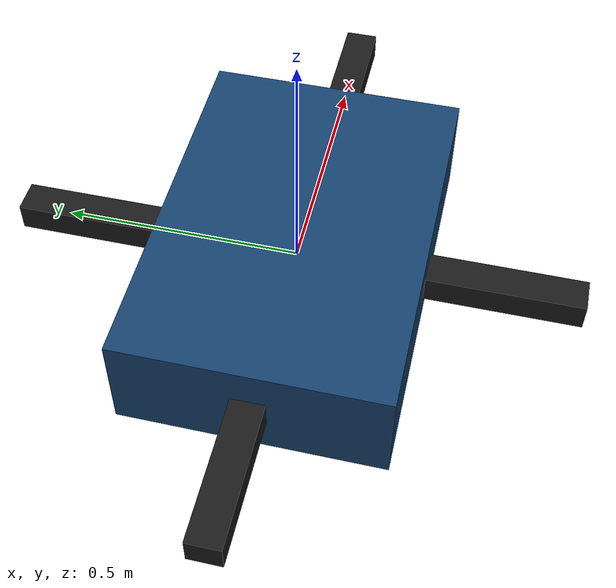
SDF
<?xml version="1.0"?>
<sdf version="1.6">
  <model name="inspection_drone">
    <static>false</static>
    <link name="base_link">
      <gravity>false</gravity>
      <inertial><mass>3.0</mass><inertia><ixx>0.2</ixx><iyy>0.2</iyy><izz>0.3</izz></inertia></inertial>
      <collision name="collision"><geometry><box><size>0.8 0.55 0.22</size></box></geometry></collision>
      <visual name="body">
        <geometry><box><size>0.8 0.55 0.22</size></box></geometry>
        <material><ambient>0.04 0.08 0.12 1</ambient><diffuse>0.08 0.25 0.42 1</diffuse></material>
      </visual>
      <visual name="arm_x"><geometry><box><size>1.4 0.07 0.06</size></box></geometry><material><diffuse>0.1 0.1 0.1 1</diffuse></material></visual>
      <visual name="arm_y"><geometry><box><size>0.07 1.2 0.06</size></box></geometry><material><diffuse>0.1 0.1 0.1 1</diffuse></material></visual>
      <visual name="camera_body"><pose>0 0 -0.20 0 0 0</pose><geometry><box><size>0.24 0.24 0.18</size></box></geometry><material><diffuse>0.05 0.05 0.05 1</diffuse></material></visual>
      <sensor name="inspection_camera" type="camera">
        <pose>0 0 -0.20 0 0 1.570796</pose>
        <always_on>true</always_on>
        <update_rate>15</update_rate>
        <visualize>true</visualize>
        <camera>
          <horizontal_fov>1.0472</horizontal_fov>
          <image><width>640</width><height>480</height><format>R8G8B8</format></image>
          <clip><near>0.1</near><far>100</far></clip>
        </camera>
        <plugin name="inspection_camera_ros" filename="libgazebo_ros_camera.so">
          <ros><namespace>/insulens</namespace></ros>
          <camera_name>camera</camera_name>
          <frame_name>camera_optical_frame</frame_name>
        </plugin>
      </sensor>
    </link>
    <plugin name="planar_motion" filename="libgazebo_ros_planar_move.so">
      <ros><namespace>/insulens</namespace></ros>
      <update_rate>30.0</update_rate>
      <publish_odom>true</publish_odom>
      <publish_odom_tf>true</publish_odom_tf>
      <odometry_frame>odom</odometry_frame>
      <robot_base_frame>base_link</robot_base_frame>
    </plugin>
  </model>
</sdf>
